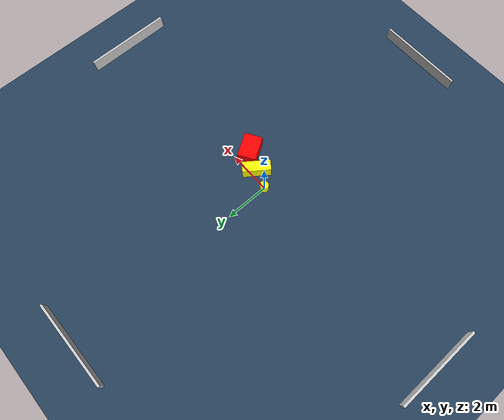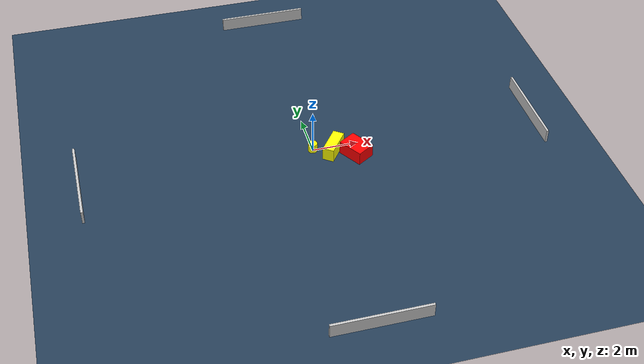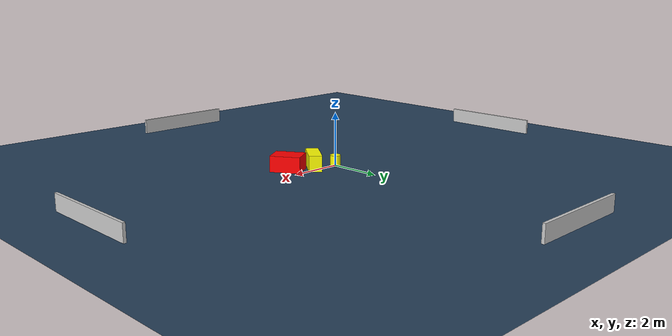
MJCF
<?xml version="1.0" ?>
<mujoco model="generated_environment">
  <option timestep="0.01" integrator="RK4" cone="elliptic"/>
  <default>
    <geom density="1"/>
  </default>
  <asset>
    <texture builtin="gradient" height="3072" name="skybox" rgb1="0.3 0.5 0.7" rgb2="0 0 0" type="skybox" width="512"/>
    <texture builtin="checker" height="300" name="groundplane" rgb1="0.2 0.3 0.4" rgb2="0.1 0.2 0.3" type="2d" width="300"/>
    <material name="groundplane" reflectance="0.2" texrepeat="5 5" texture="groundplane"/>
  </asset>
  <worldbody>
    <light dir="0 0 -1" directional="true" pos="0 0 1.5"/>
    <geom condim="3" friction="0.5 0.005 0.001" material="groundplane" name="floor" pos="0 0 0" size="0 0 0.05" type="plane"/>
    <body name="walls">
      <geom name="wall_1" condim="4" pos="-10.0 0.0 0.3" rgba="0.800000011920929 0.800000011920929 0.800000011920929 1.0" size="0.05 2.0 0.3" type="box"/>
      <geom name="wall_2" condim="4" pos="10.0 0.0 0.3" rgba="0.800000011920929 0.800000011920929 0.800000011920929 1.0" size="0.05 2.0 0.3" type="box"/>
      <geom name="wall_3" condim="4" pos="0.0 -10.0 0.3" rgba="0.800000011920929 0.800000011920929 0.800000011920929 1.0" size="2.0 0.05 0.3" type="box"/>
      <geom name="wall_4" condim="4" pos="0.0 10.0 0.3" rgba="0.800000011920929 0.800000011920929 0.800000011920929 1.0" size="2.0 0.05 0.3" type="box"/>
    </body>
    <body name="robot">
      <joint name="joint_x" type="slide" pos="0 0 0" axis="1 0 0"/>
      <joint name="joint_y" type="slide" pos="0 0 0" axis="0 1 0"/>
      <geom name="robot" type="cylinder" pos="0.0 0.0 0.2" size="0.2 0.2 0.0" mass="5.0" friction="1.0 0.005 0.0001" condim="4" rgba="1.0 1.0 0.0 1.0"/>
    </body>
    <body name="obstacle_1_movable">
      <geom name="obstacle_1_movable" condim="4" pos="0.8434332670738292 -0.29269854411437735 0.3" euler="0 0 323.56370357022445" friction="0.0 0.005 0.001" rgba="1.0 1.0 0.0 1.0" size="0.2431272871287798 0.6310864052035505 0.3" type="box" mass="0.1"/>
      <joint type="free"/>
    </body>
    <body name="obstacle_2_static">
      <geom name="obstacle_2_static" condim="4" pos="1.7443784401819267 -0.7035446879511378 0.3" euler="0 0 302.0155385541721" friction="0.0 0.005 0.001" rgba="1.0 0.0 0.0 1.0" size="0.5678424302622547 0.4184017011605476 0.3" type="box"/>
    </body>
  </worldbody>
  <actuator>
    <motor name="actuator_x" joint="joint_x" gear="1" ctrlrange="-1 1"/>
    <motor name="actuator_y" joint="joint_y" gear="1" ctrlrange="-1 1"/>
  </actuator>
</mujoco>
